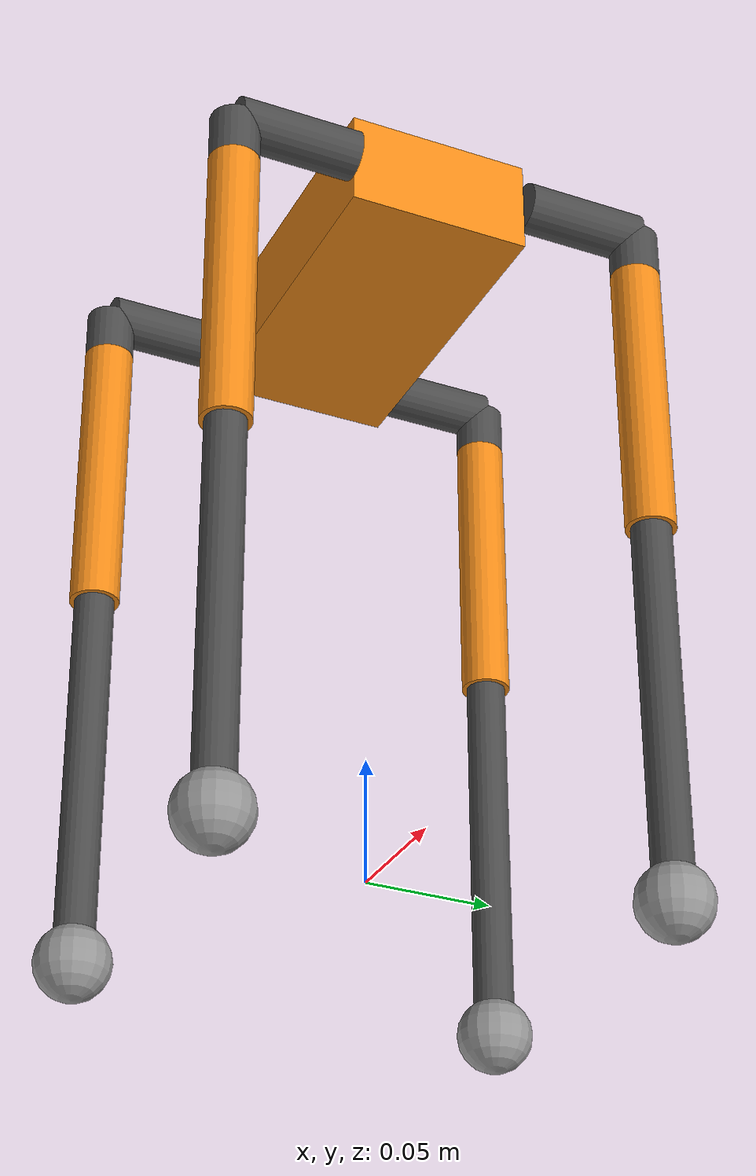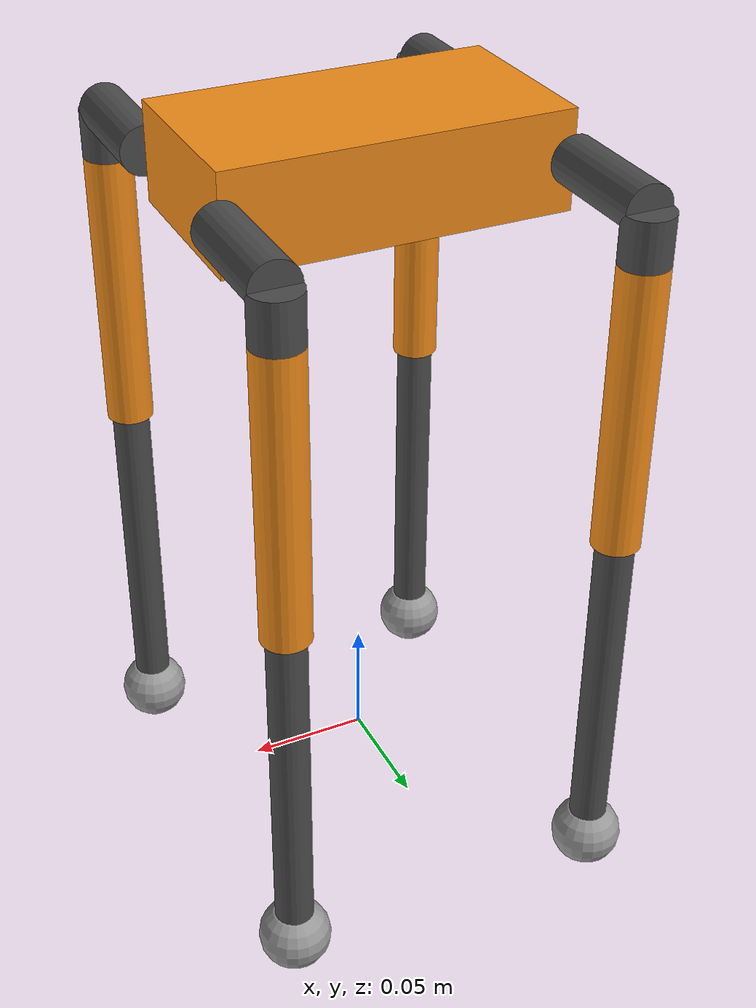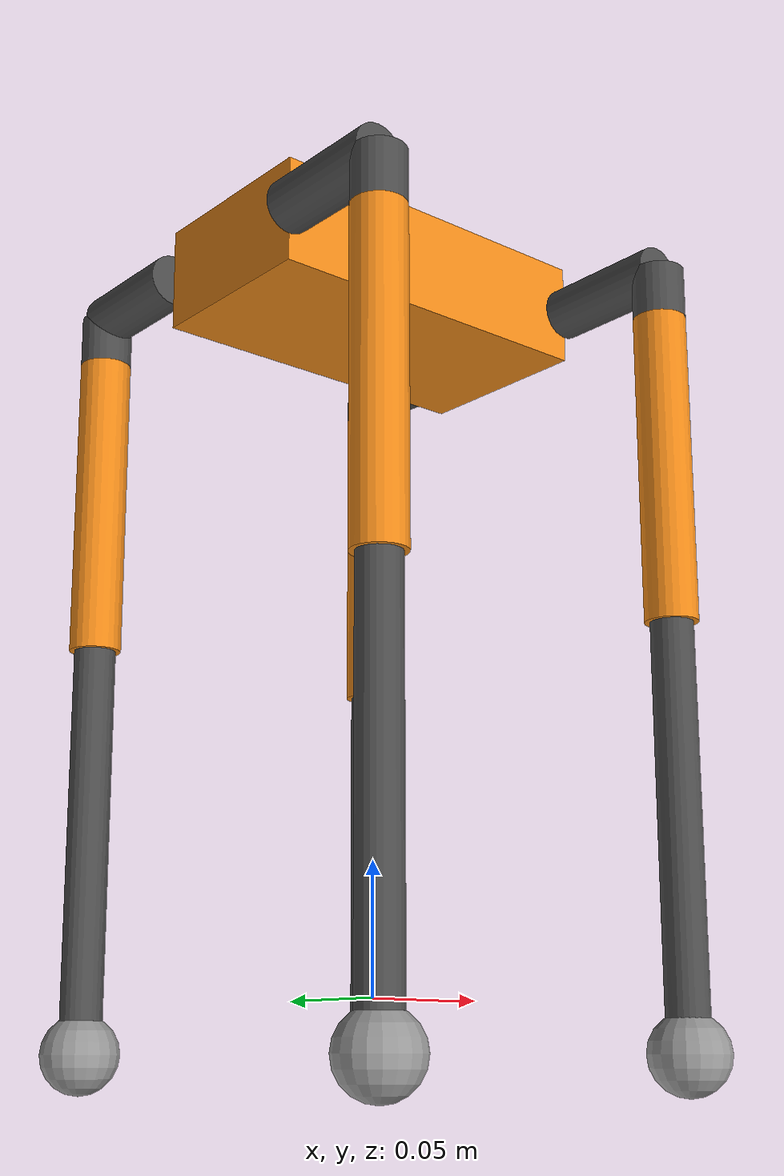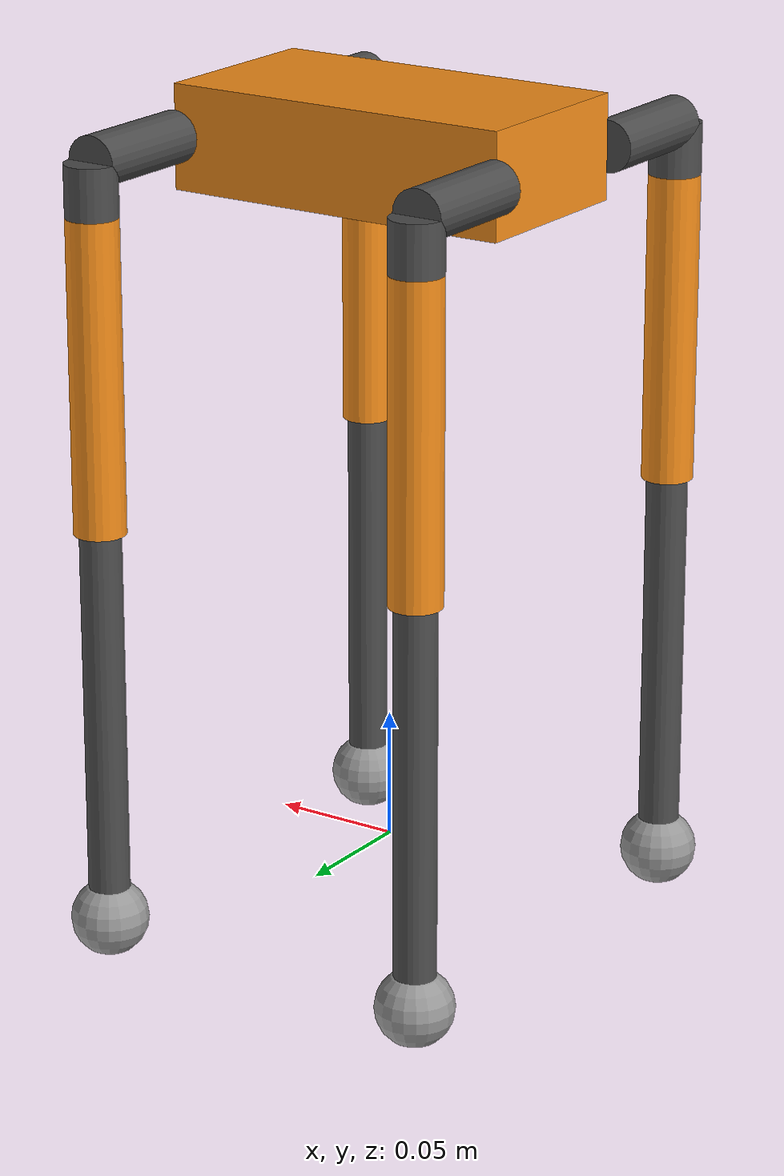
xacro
<?xml version="1.0"?>
<robot xmlns:xacro="http://www.ros.org/wiki/xacro">

    <!-- Dimensions from kinematics.py (mm → m) -->
    <xacro:property name="body_length" value="0.140" />
    <xacro:property name="body_width"  value="0.075" />
    <xacro:property name="body_height" value="0.040" />

    <xacro:property name="l1" value="0.050" />  <!-- hip external (shoulder width) -->
    <xacro:property name="l2" value="0.020" />  <!-- hip internal offset -->
    <xacro:property name="l3" value="0.120" />  <!-- upper leg -->
    <xacro:property name="l4" value="0.155" />  <!-- lower leg -->

    <xacro:property name="leg_radius" value="0.010" />
    <xacro:property name="foot_radius" value="0.015" />

    <!-- ==================== base_footprint ==================== -->
    <link name="base_footprint" />

    <joint name="base_joint" type="fixed">
        <parent link="base_footprint" />
        <child link="base_link" />
        <origin xyz="0 0 ${l3 + l4}" rpy="0 0 0" />
    </joint>

    <!-- ==================== base_link (body) ==================== -->
    <link name="base_link">
        <visual>
            <geometry>
                <box size="${body_length} ${body_width} ${body_height}" />
            </geometry>
            <material name="orange" />
        </visual>
        <collision>
            <geometry>
                <box size="${body_length} ${body_width} ${body_height}" />
            </geometry>
        </collision>
        <inertial>
            <mass value="1.0" />
            <inertia ixx="0.001" ixy="0" ixz="0" iyy="0.001" iyz="0" izz="0.001" />
        </inertial>
    </link>

    <!-- ==================== Leg macro ==================== -->
    <xacro:macro name="leg" params="prefix x_sign y_sign">
        <!--
            x_sign: +1 for front, -1 for rear
            y_sign: +1 for left, -1 for right
        -->

        <!-- Hip external joint (shoulder) — rotates around X axis -->
        <joint name="${prefix}_hip_external_joint" type="revolute">
            <parent link="base_link" />
            <child link="${prefix}_hip_external_link" />
            <origin xyz="${x_sign * body_length/2} ${y_sign * body_width/2} 0" rpy="0 0 0" />
            <axis xyz="1 0 0" />
            <limit lower="${-pi/2}" upper="${pi/2}" effort="10" velocity="3.0" />
        </joint>

        <link name="${prefix}_hip_external_link">
            <visual>
                <origin xyz="0 ${y_sign * l1/2} 0" rpy="${pi/2} 0 0" />
                <geometry>
                    <cylinder radius="${leg_radius}" length="${l1}" />
                </geometry>
                <material name="dark_grey" />
            </visual>
            <collision>
                <origin xyz="0 ${y_sign * l1/2} 0" rpy="${pi/2} 0 0" />
                <geometry>
                    <cylinder radius="${leg_radius}" length="${l1}" />
                </geometry>
            </collision>
            <inertial>
                <mass value="0.05" />
                <inertia ixx="0.0001" ixy="0" ixz="0" iyy="0.0001" iyz="0" izz="0.0001" />
            </inertial>
        </link>

        <!-- Hip internal joint — rotates around Y axis -->
        <joint name="${prefix}_hip_internal_joint" type="revolute">
            <parent link="${prefix}_hip_external_link" />
            <child link="${prefix}_hip_internal_link" />
            <origin xyz="0 ${y_sign * l1} 0" rpy="0 0 0" />
            <axis xyz="0 1 0" />
            <limit lower="${-pi/2}" upper="${pi/2}" effort="10" velocity="3.0" />
        </joint>

        <link name="${prefix}_hip_internal_link">
            <visual>
                <origin xyz="0 0 ${-l2/2}" rpy="0 0 0" />
                <geometry>
                    <cylinder radius="${leg_radius}" length="${l2}" />
                </geometry>
                <material name="dark_grey" />
            </visual>
            <collision>
                <origin xyz="0 0 ${-l2/2}" rpy="0 0 0" />
                <geometry>
                    <cylinder radius="${leg_radius}" length="${l2}" />
                </geometry>
            </collision>
            <inertial>
                <mass value="0.05" />
                <inertia ixx="0.0001" ixy="0" ixz="0" iyy="0.0001" iyz="0" izz="0.0001" />
            </inertial>
        </link>

        <!-- Knee joint — rotates around Y axis -->
        <joint name="${prefix}_knee_joint" type="revolute">
            <parent link="${prefix}_hip_internal_link" />
            <child link="${prefix}_upper_leg_link" />
            <origin xyz="0 0 ${-l2}" rpy="0 0 0" />
            <axis xyz="0 1 0" />
            <limit lower="${-pi/2}" upper="${pi/2}" effort="10" velocity="3.0" />
        </joint>

        <link name="${prefix}_upper_leg_link">
            <visual>
                <origin xyz="0 0 ${-l3/2}" rpy="0 0 0" />
                <geometry>
                    <cylinder radius="${leg_radius}" length="${l3}" />
                </geometry>
                <material name="orange" />
            </visual>
            <collision>
                <origin xyz="0 0 ${-l3/2}" rpy="0 0 0" />
                <geometry>
                    <cylinder radius="${leg_radius}" length="${l3}" />
                </geometry>
            </collision>
            <inertial>
                <mass value="0.1" />
                <inertia ixx="0.0001" ixy="0" ixz="0" iyy="0.0001" iyz="0" izz="0.0001" />
            </inertial>
        </link>

        <!-- Foot joint (fixed) -->
        <joint name="${prefix}_foot_joint" type="fixed">
            <parent link="${prefix}_upper_leg_link" />
            <child link="${prefix}_lower_leg_link" />
            <origin xyz="0 0 ${-l3}" rpy="0 0 0" />
        </joint>

        <link name="${prefix}_lower_leg_link">
            <visual>
                <origin xyz="0 0 ${-l4/2}" rpy="0 0 0" />
                <geometry>
                    <cylinder radius="${leg_radius * 0.8}" length="${l4}" />
                </geometry>
                <material name="dark_grey" />
            </visual>
            <collision>
                <origin xyz="0 0 ${-l4/2}" rpy="0 0 0" />
                <geometry>
                    <cylinder radius="${leg_radius * 0.8}" length="${l4}" />
                </geometry>
            </collision>
            <inertial>
                <mass value="0.08" />
                <inertia ixx="0.0001" ixy="0" ixz="0" iyy="0.0001" iyz="0" izz="0.0001" />
            </inertial>
        </link>

        <!-- Foot contact sphere -->
        <joint name="${prefix}_foot_contact_joint" type="fixed">
            <parent link="${prefix}_lower_leg_link" />
            <child link="${prefix}_foot_link" />
            <origin xyz="0 0 ${-l4}" rpy="0 0 0" />
        </joint>

        <link name="${prefix}_foot_link">
            <visual>
                <geometry>
                    <sphere radius="${foot_radius}" />
                </geometry>
                <material name="grey" />
            </visual>
            <collision>
                <geometry>
                    <sphere radius="${foot_radius}" />
                </geometry>
            </collision>
            <inertial>
                <mass value="0.01" />
                <inertia ixx="0.00001" ixy="0" ixz="0" iyy="0.00001" iyz="0" izz="0.00001" />
            </inertial>
        </link>
    </xacro:macro>

    <!-- ==================== Instantiate 4 legs ==================== -->
    <!-- Right Front: x_sign=+1 (front), y_sign=-1 (right) -->
    <xacro:leg prefix="rf" x_sign="1"  y_sign="-1" />
    <!-- Left Front:  x_sign=+1 (front), y_sign=+1 (left) -->
    <xacro:leg prefix="lf" x_sign="1"  y_sign="1" />
    <!-- Right Back:  x_sign=-1 (rear),  y_sign=-1 (right) -->
    <xacro:leg prefix="rb" x_sign="-1" y_sign="-1" />
    <!-- Left Back:   x_sign=-1 (rear),  y_sign=+1 (left) -->
    <xacro:leg prefix="lb" x_sign="-1" y_sign="1" />

</robot>
